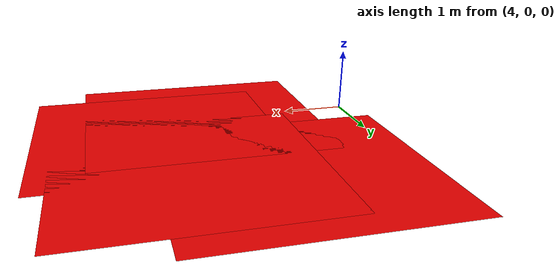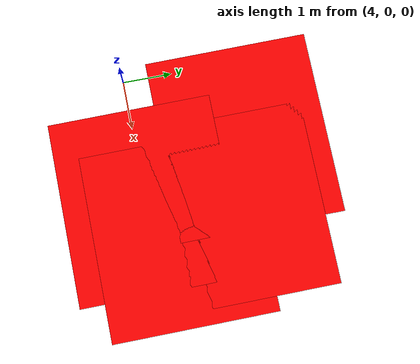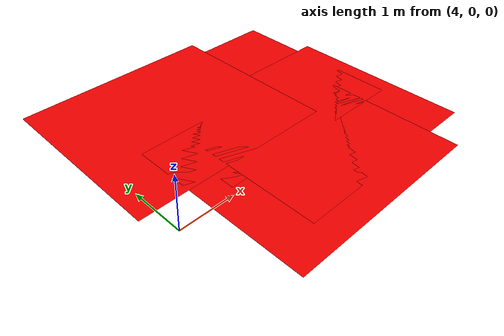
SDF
<sdf version="1.5">
 <world name="default">
  <include><uri>model://sun</uri></include>
  <model name="red0"><include><pose>7.0 01.8 0.01 0 0 0</pose><uri>model://red</uri></include></model>
  <model name="red1"><include><pose>7.3 0.5 0.01 0 0 0</pose><uri>model://red</uri></include></model>
  <model name="red2"><include><pose>5.6 2.2 0.01 0 0 0</pose><uri>model://red</uri></include></model>
  <model name="red3"><include><pose>6.5 0.0 0.01 0 0 0</pose><uri>model://red</uri></include></model>
  <scene>
   <ambient>0.8 0.8 0.8 1</ambient>
   <background>0.8 0.9 1 1</background>
   <shadows>false</shadows>
   <grid>false</grid>
   <origin_visual>false</origin_visual>
  </scene>
  <physics name="default_physics" default="0" type="ode">
   <gravity>0 0 -9.8066</gravity>
   <ode>
    <solver>
     <type>quick</type>
     <iters>10</iters>
     <sor>1.3</sor>
     <use_dynamic_moi_rescaling>0</use_dynamic_moi_rescaling>
    </solver>
    <constraints>
     <cfm>0</cfm>
     <erp>0.2</erp>
     <contact_max_correcting_vel>100</contact_max_correcting_vel>
     <contact_surface_layer>0.001</contact_surface_layer>
    </constraints>
   </ode>
   <max_step_size>0.004</max_step_size>
   <real_time_factor>1</real_time_factor>
   <real_time_update_rate>250</real_time_update_rate>
   <magnetic_field>6.0e-6 2.3e-5 -4.2e-5</magnetic_field>
  </physics>
 </world>
</sdf>

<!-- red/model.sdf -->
<sdf version="1.7">
  <model name='red'>
    <link name='link'>
      <inertial>
        <mass>1</mass>
        <inertia>
          <ixx>0.166667</ixx>
          <ixy>0</ixy>
          <ixz>0</ixz>
          <iyy>0.166667</iyy>
          <iyz>0</iyz>
          <izz>0.166667</izz>
        </inertia>
        <pose>0 0 0 0 -0 0</pose>
      </inertial>
      <self_collide>0</self_collide>
      <enable_wind>0</enable_wind>
      <kinematic>0</kinematic>
      <pose>0 0 0 0 -0 0</pose>
      <gravity>1</gravity>
      <visual name='visual'>
        <geometry>
          <mesh>
            <uri>model://red/red.dae</uri>
            <scale>1.0 1.0 1.0</scale>
          </mesh>
        </geometry>
        <pose>0 0 0 0 -0 0</pose>
        <transparency>0</transparency>
        <cast_shadows>1</cast_shadows>
      </visual>
    </link>
    <static>1</static>
    <allow_auto_disable>1</allow_auto_disable>
  </model>
</sdf>
